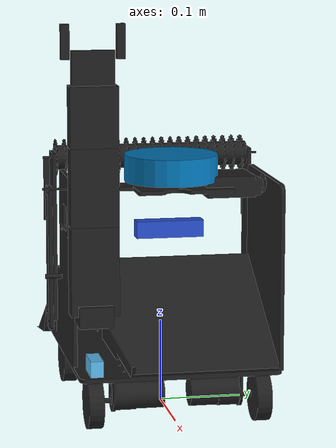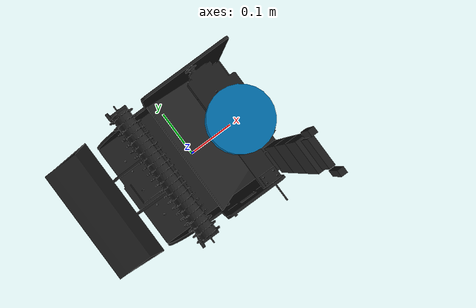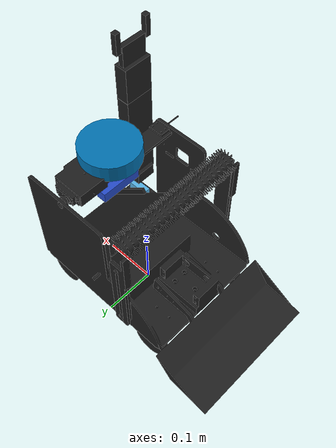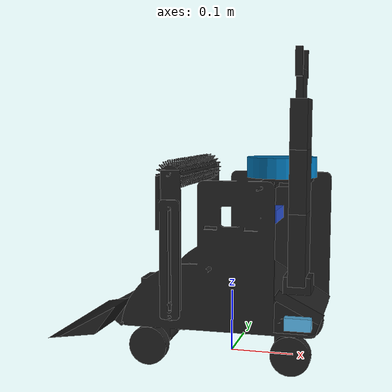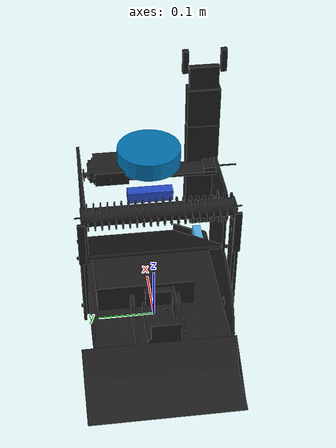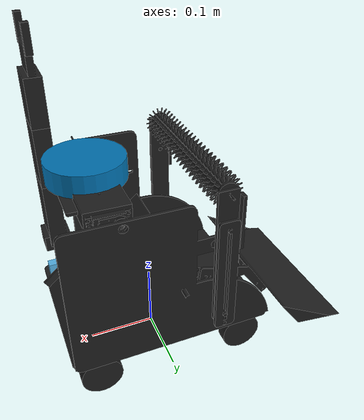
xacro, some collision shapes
<?xml version="1.0" ?>
<robot name="sakura" xmlns:xacro="http://ros.org/wiki/xacro">
  <xacro:include filename="$(find tel_map)/urdf/common_properties.xacro"/>
  <xacro:include filename="$(find tel_map)/urdf/sakura.gazebo.xacro"/>

  <link name="base_footprint"/>

  <joint name="base_joint" type="fixed">
    <parent link="base_footprint"/>
    <child link="mc_base"/>
    <origin xyz="0.0 0.0 0.0" rpy="0 0 0"/>
  </joint>

  <link name="mc_base">
    <visual>
      <origin xyz="0.3 0.135 0.015" rpy="1.57079 0 -1.57079"/>
      <geometry>
        <mesh filename="package://tel_map/meshes/bases/main.stl" scale="0.001 0.001 0.001"/>
      </geometry>
      <material name="light_black"/>
    </visual>

    <collision>
      <origin xyz="0.0 0 0.07" rpy="0 0 0"/>
      <geometry>
        <box size="0.280 0.280 0.05"/>
      </geometry>
    </collision>

    <inertial>
      <origin xyz="0 0 0" rpy="0 0 0"/>
      <mass value="200.0"/>
      <inertia ixx="0.15" ixy="0.001" ixz="0.001"
               iyy="0.15" iyz="0.001"
               izz="0.15" />
    </inertial>
  </link>

  <!--Shovel-->>

  <joint name="shovel_joint" type="revolute">
    <parent link="base_footprint"/>
    <child link="shovel_link"/>
    <origin xyz="-0.077 0.0 0.105" rpy="0 0 0"/>
    <limit lower="-0.1" upper="3.0416" effort="50" velocity="7.5"/>
    <axis xyz="0.0 1.0 0.0"/>
  </joint>

  <link name="shovel_link">
    <visual>
      <origin xyz="0.028 0.14 0.375" rpy="3.14159 0 -1.57079"/>
      <geometry>
        <mesh filename="package://tel_map/meshes/bases/shovel.stl" scale="0.001 0.001 0.001"/>
      </geometry>
      <material name="light_black"/>
    </visual>

    <collision  name="shovel_collision1">
      <origin xyz="-0.15 0 -0.065" rpy="0 -0.16 0"/>
      <geometry>
        <box size="0.09 0.24 0.002"/>
      </geometry>
    </collision>

    <collision name="shovel_collision2">
      <origin xyz="-0.1 0 -0.035" rpy="0 -0.95 0"/>
      <geometry>
        <box size="0.05 0.24 0.002"/>
      </geometry>
    </collision>

    <inertial>
      <origin xyz="-0.1 0 0" />
      <mass value="0.1" />
      <inertia ixx="1.1175580e-05" ixy="-4.2369783e-11" ixz="-5.9381719e-09"
               iyy="1.1192413e-05" iyz="-1.4400107e-11"
               izz="2.0712558e-05" />
      </inertial>
  </link>

  <!--roller-->>

  <joint name="roller_arm_joint" type="revolute">
    <parent link="base_footprint"/>
    <child link="roller_arm_a_link"/>
    <origin xyz="-0.069 0.0 0.083" rpy="0 0 0"/>
    <limit lower="-2.0" upper="1.0" effort="50" velocity="7.5"/>
    <axis xyz="0.0 1.0 0.0"/>
  </joint>

  <link name="roller_arm_a_link">
    <visual>
      <origin xyz="-0.02 0.335 -0.005" rpy="1.57079 0 0"/>
      <geometry>
        <mesh filename="package://tel_map/meshes/bases/roller_arm_a.stl" scale="0.001 0.001 0.001"/>
      </geometry>
      <material name="light_black"/>
    </visual>

    <inertial>
      <origin xyz="0.0 0 0.1" />
      <mass value="0.1" />
      <inertia ixx="0.005" ixy="0.00005" ixz="0.00005"
               iyy="0.005" iyz="0.00005"
               izz="0.005" />
    </inertial>
  </link>

   <joint name="roller_arm_slider" type="prismatic">
    <parent link="roller_arm_a_link"/>
    <child link="roller_arm_b_link"/>
    <origin xyz="0.0 0.0 0.0" rpy="0 0 0"/>
    <limit lower="0.0" upper="0.16" effort="250.0" velocity="0.15"/>
    <axis xyz="0.0 0.0 1.0"/>
    <safety_controller k_velocity="70" k_position="50" soft_lower_limit="-10.0" soft_upper_limit="10.0" />
  </joint>

  <link name="roller_arm_b_link">
    <visual>
      <origin xyz="-0.014 0.335 0.01" rpy="1.571 0 0"/>
      <geometry>
        <mesh filename="package://tel_map/meshes/bases/roller_arm_b.stl" scale="0.001 0.001 0.001"/>
      </geometry>
      <material name="light_black"/>
    </visual>

    <inertial>
      <origin xyz="0.0 0 0.1" />
      <mass value="0.05" />
      <inertia ixx="0.005" ixy="0.00005" ixz="0.00005"
               iyy="0.005" iyz="0.00005"
               izz="0.005" />
    </inertial>
  </link>

  <joint name="roller_joint" type="continuous">
    <parent link="roller_arm_b_link"/>
    <child link="roller_link"/>
    <origin xyz="0.0 0.0 0.212" rpy="0 0 0"/>
    <limit effort="500" velocity="20000.0"/>
    <axis xyz="0.0 1.0 0.0"/>
  </joint>

  <link name="roller_link">
    <visual>
      <origin xyz="-0.0223 -0.135 -0.022" rpy="0 0 0"/>
      <geometry>
        <mesh filename="package://tel_map/meshes/bases/roller.stl" scale="0.001 0.001 0.001"/>
      </geometry>
      <material name="light_black"/>
    </visual>

    <collision>
      <origin xyz="0 0 0" rpy="1.571 0 0"/>
      <geometry>
        <cylinder length="0.24" radius="0.022"/>
      </geometry>
    </collision>

    <inertial>
      <origin xyz="-0.0 0 0" />
      <mass value="0.02" />
      <inertia ixx="1.1175580e-05" ixy="0.0" ixz="0.0"
               iyy="1.1192413e-05" iyz="0.0"
               izz="2.0712558e-05" />
    </inertial>
  </link>

<!--wheels-->

  <joint name="wheel_left_joint" type="continuous">
    <parent link="mc_base"/>
    <child link="wheel_left_link"/>
    <origin xyz="0.11 0.1 0.03" rpy="-1.57079 0 0"/>
    <axis xyz="0 0 1"/>
  </joint>

  <link name="wheel_left_link">
    <visual>
      <origin xyz="0 0 0" rpy="0 0 0"/>
      <geometry>
        <cylinder length="0.018" radius="0.03"/>
      </geometry>
    </visual>

    <collision>
      <origin xyz="0 0 0" rpy="0 0 0"/>
      <geometry>
        <cylinder length="0.018" radius="0.03"/>
      </geometry>
    </collision>

    <inertial>
      <origin xyz="0 0 0" />
      <mass value="2.8498940e-02" />
      <inertia ixx="1.1175580e-05" ixy="-4.2369783e-11" ixz="-5.9381719e-09"
               iyy="1.1192413e-05" iyz="-1.4400107e-11"
               izz="2.0712558e-05" />
      </inertial>
  </link>

  <joint name="wheel_right_joint" type="continuous">
    <parent link="mc_base"/>
    <child link="wheel_right_link"/>
    <origin xyz="0.11 -0.1 0.03" rpy="-1.57079 0 0"/>
    <axis xyz="0 0 1"/>
  </joint>

  <link name="wheel_right_link">
    <visual>
      <origin xyz="0 0 0" rpy="0 0 0"/>
      <geometry>
        <cylinder length="0.018" radius="0.03"/>
      </geometry>
      <material name="dark"/>
    </visual>

    <collision>
      <origin xyz="0 0 0" rpy="0 0 0"/>
      <geometry>
        <cylinder length="0.018" radius="0.03"/>
      </geometry>
    </collision>

    <inertial>
      <origin xyz="0 0 0" />
      <mass value="2.8498940e-02" />
      <inertia ixx="1.1175580e-05" ixy="-4.2369783e-11" ixz="-5.9381719e-09"
               iyy="1.1192413e-05" iyz="-1.4400107e-11"
               izz="2.0712558e-05" />
      </inertial>
  </link>

  <joint name="wheel_bleft_joint" type="continuous">
    <parent link="mc_base"/>
    <child link="wheel_bleft_link"/>
    <origin xyz="-0.11 0.1 0.03" rpy="-1.57079 0 0"/>
    <axis xyz="0 0 1"/>
  </joint>

  <link name="wheel_bleft_link">
    <visual>
      <origin xyz="0 0 0" rpy="0 0 0"/>
      <geometry>
        <cylinder length="0.018" radius="0.03"/>
      </geometry>
      <material name="dark"/>
    </visual>

    <collision>
      <origin xyz="0 0 0" rpy="0 0 0"/>
      <geometry>
        <cylinder length="0.018" radius="0.03"/>
      </geometry>
    </collision>

    <inertial>
      <origin xyz="0 0 0" />
      <mass value="2.8498940e-02" />
      <inertia ixx="1.1175580e-05" ixy="-4.2369783e-11" ixz="-5.9381719e-09"
               iyy="1.1192413e-05" iyz="-1.4400107e-11"
               izz="2.0712558e-05" />
      </inertial>
  </link>

  <joint name="wheel_bright_joint" type="continuous">
    <parent link="mc_base"/>
    <child link="wheel_bright_link"/>
    <origin xyz="-0.11 -0.1 0.03" rpy="-1.57079 0 0"/>
    <axis xyz="0 0 1"/>
  </joint>

  <link name="wheel_bright_link">
    <visual>
      <origin xyz="0 0 0" rpy="0 0 0"/>
      <geometry>
        <cylinder length="0.018" radius="0.03"/>
      </geometry>
      <material name="dark"/>
    </visual>

    <collision>
      <origin xyz="0 0 0" rpy="0 0 0"/>
      <geometry>
        <cylinder length="0.018" radius="0.03"/>
      </geometry>
    </collision>

    <inertial>
      <origin xyz="0 0 0" />
      <mass value="2.8498940e-02" />
      <inertia ixx="1.1175580e-05" ixy="-4.2369783e-11" ixz="-5.9381719e-09"
               iyy="1.1192413e-05" iyz="-1.4400107e-11"
               izz="2.0712558e-05" />
      </inertial>
  </link>

  <joint name="rot_joint" type="revolute">
    <parent link="base_footprint"/>
    <child link="rot_link"/>
    <origin xyz="0.067 -0.12 0.278" rpy="0 0 0"/>
    <limit lower="0.0" upper="4.7124" effort="120" velocity="7.5"/>
    <axis xyz="0.0 1.0 0.0"/>
  </joint>

  <link name="rot_link">
    <visual>
    <origin xyz="-0.243 0.238 0.0" rpy="-1.28 0 -1.57079"/>
      <geometry>
        <mesh filename="package://tel_map/meshes/bases/rot.stl" scale="0.001 0.001 0.001"/>
      </geometry>
      <material name="light_black"/>
    </visual>

    <inertial>
      <mass value="0.114" />
      <origin xyz="0 0 0" />
      <inertia ixx="0.001" ixy="0.0" ixz="0.0"
               iyy="0.001" iyz="0.0"
               izz="0.001" />
    </inertial>
  </link>

  <joint name="imu_joint" type="fixed">
    <parent link="mc_base"/>
    <child link="imu_link"/>
    <origin xyz="-0.032 0 0.068" rpy="0 0 0"/>
  </joint>

  <link name="imu_link"/>

  <joint name="scan_joint" type="fixed">
    <parent link="rot_link"/>
    <child link="base_scan"/>
    <origin xyz="0.05 0 0.0" rpy="0 0 0"/>
  </joint>

  <link name="base_scan">

    <visual>
      <origin xyz="-0.038 0.118 0.025" rpy="0 0 0"/>
      <geometry>
        <mesh filename="package://tel_map/meshes/sensors/lds.stl" scale="0.001 0.001 0.001"/>
      </geometry>
      <material name="dark"/>
    </visual>

    <collision>
      <origin xyz="-0.038 0.118 0.025" rpy="0 0 0"/>
      <geometry>
        <cylinder length="0.0315" radius="0.055"/>
      </geometry>
    </collision>

    <inertial>
      <mass value="0.114" />
      <origin xyz="-0.038 0.118 0.025" rpy="0 0 0"/>
      <inertia ixx="0.001" ixy="0.0" ixz="0.0"
               iyy="0.001" iyz="0.0"
               izz="0.001" />
    </inertial>
  </link>

  <joint name="scaner_joint" type="fixed">
    <parent link="base_scan"/>
    <child link="scaner_link"/>
    <origin xyz="-0.038 0.118 0.025" rpy="0 0 0"/>
  </joint>

  <link name="scaner_link"/>

<joint name="cam_yaw_joint" type="revolute">
      <origin xyz="0.0 0.118 -0.05" rpy="0 0 0"/>
      <parent link="rot_link"/>
      <child link="camera_link"/>
      <limit lower="-1.57" upper="1.57" effort="50" velocity="7.5"/>
    	<axis xyz="0.0 0.0 1.0"/>
      <calibration rising="0.0"/>
      <dynamics damping="0.0" friction="0.0"/>
      <safety_controller k_velocity="80" k_position="50" soft_lower_limit="-5.0" soft_upper_limit="5.0" />
    </joint>

  <link name="camera_link">
    <visual>
      <origin xyz="0.0 0.0 0.0" rpy="0 0 0"/>
      <geometry>
        <box size="0.02 0.08 0.02"/>
      </geometry>
      <material name="blue"/>
    </visual>
    <inertial>
      <mass value="0.100" />
      <origin xyz="-0.0 0.0 0.0" rpy="0 0 0"/>
      <inertia ixx="0.000001" ixy="0.0001" ixz="0.0001"
               iyy="0.000001" iyz="0.0001"
               izz="0.000001" />
    </inertial>
  </link>

  <joint name="camera_rgb_joint" type="fixed">
    <origin xyz="0.0 0.0 0.0" rpy="0 0 0"/>
    <parent link="camera_link"/>
    <child link="camera_rgb_frame"/>
  </joint>
  <link name="camera_rgb_frame"/>

  <joint name="camera_rgb_optical_joint" type="fixed">
    <origin xyz="0 0 0" rpy="-1.57 0 -1.57"/>
    <parent link="camera_rgb_frame"/>
    <child link="camera_rgb_optical_frame"/>
  </joint>
  <link name="camera_rgb_optical_frame"/>

<joint name="arm_base_joint" type="fixed">
    <origin xyz="0.12 -0.10 0.075" rpy="0 0 0"/>
    <parent link="base_footprint"/>
    <child link="arm_base"/>
    </joint>

  <link name='arm_base'>
      <inertial>
      <origin xyz="0 0 0" />
      <mass value="0.001" />
      <inertia  ixx="0.0" ixy="0.0"  ixz="0.0"  iyy="0.0"  iyz="0.0"  izz="0.0" />
      </inertial>
      <visual name='visual'>
      <origin xyz="0 0 0"/>
        <geometry>
        <box size="0.04 0.015 0.025" />
        </geometry>
      </visual>
      <collision name='collision'>
      <origin xyz="0 0 0"/>
        <geometry>
        <box size="0.04 0.015 0.025" />
        </geometry>
      </collision>
    </link>

<joint name="plate_joint" type="revolute">
    <origin xyz="0 0 0.064" rpy="0 0 0"/>
      <parent link="arm_base"/>
      <child link="plate"/>
      <limit lower="-1.57" upper="1.57" effort="50" velocity="7.5"/>
    	<axis xyz="0.0 0.0 1.0"/>
      <calibration rising="0.0"/>
      <dynamics damping="0.0" friction="0.0"/>
      <safety_controller k_velocity="80" k_position="50" soft_lower_limit="-5.0" soft_upper_limit="5.0" />
    </joint>

<link name='plate'>
      <inertial>
      <origin xyz="0 0 0.0" />
      <mass value="0.001" />
      <inertia  ixx="0.0" ixy="0.0"  ixz="0.0"  iyy="0.0"  iyz="0.0"  izz="0.0" />
      </inertial>
      <visual name='visual'>
      <origin xyz="0 0 0.0"/>
        <geometry>
        <box size="0.04 0.04 0.025" />
        </geometry>
      </visual>
      <collision name='collision'>
      <origin xyz="0 0 0.0"/>
        <geometry>
        <box size="0.04 0.04 0.025" />
        </geometry>
      </collision>
    </link>

<joint name="j1_joint" type="revolute">
    <origin xyz="0 0 0.0" rpy="0 0 0"/>
      <parent link="plate"/>
      <child link="link2"/>
      <limit lower="-1.57" upper="1.57" effort="50" velocity="7.5"/>
    	<axis xyz="0.0 1.0 0.0"/>
      <calibration rising="0.0"/>
      <dynamics damping="0.0" friction="0.0"/>
      <safety_controller k_velocity="80" k_position="50" soft_lower_limit="-5.0" soft_upper_limit="5.0" />
    </joint>

<link name='link2'>
      <inertial>
      <origin xyz="0 0 0.05215" />
      <mass value="0.001" />
      <inertia  ixx="0.0" ixy="0.0"  ixz="0.0"  iyy="0.0"  iyz="0.0"  izz="0.0" />
      </inertial>
      <visual name='visual'>
      <origin xyz="0 0 0.05215"/>
        <geometry>
        <box size="0.025 0.0564 0.1043" />
        </geometry>
      </visual>
      <collision name='collision'>
      <origin xyz="0 0 0.05215"/>
        <geometry>
        <box size="0.025 0.0564 0.1043" />
        </geometry>
      </collision>
    </link>

<joint name="j2_joint" type="revolute">
    <origin xyz="0 0 0.1043" rpy="0 0 0.0"/>
      <parent link="link2"/>
      <child link="link3"/>
      <limit lower="-1.57" upper="1.57" effort="50" velocity="7.5"/>
    	<axis xyz="0.0 1.0 0.0"/>
      <calibration rising="0.0"/>
      <dynamics damping="0.0" friction="0.0"/>
      <safety_controller k_velocity="80" k_position="50" soft_lower_limit="-5.0" soft_upper_limit="5.0" />
    </joint>

<link name='link3'>
      <inertial>
      <origin xyz="0 0 0.0455" />
      <mass value="0.001" />
      <inertia  ixx="0.0" ixy="0.0"  ixz="0.0"  iyy="0.0"  iyz="0.0"  izz="0.0" />
      </inertial>
      <visual name='visual'>
      <origin xyz="0 0 0.0455"/>
        <geometry>
        <box size="0.025 0.0564 0.091" />
        </geometry>
      <material name="light_black"/>
      </visual>
      <collision name='collision'>
      <origin xyz="0 0 0.0455"/>
        <geometry>
        <box size="0.025 0.0564 0.091" />
        </geometry>
      </collision>
    </link>

<joint name="j3_joint" type="revolute">
    <origin xyz="0 0 0.091" rpy="0 0 0"/>
      <parent link="link3"/>
      <child link="link4"/>
      <limit lower="-1.57" upper="1.57" effort="50" velocity="7.5"/>
    	<axis xyz="0.0 -1.0 0.0"/>
      <calibration rising="0.0"/>
      <dynamics damping="0.0" friction="0.0"/>
      <safety_controller k_velocity="80" k_position="50" soft_lower_limit="-5.0" soft_upper_limit="5.0" />
    </joint>

<link name='link4'>
      <inertial>
      <origin xyz="0 0 0.0355" />
      <mass value="0.001" />
      <inertia  ixx="0.0" ixy="0.0"  ixz="0.0"  iyy="0.0"  iyz="0.0"  izz="0.0" />
      </inertial>
      <visual name='visual'>
      <origin xyz="0 0 0.0355"/>
        <geometry>
        <box size="0.025 0.0564 0.071" />
        </geometry>
      </visual>
      <collision name='collision'>
      <origin xyz="0 0 0.0355"/>
        <geometry>
        <box size="0.025 0.0564 0.071" />
        </geometry>
      </collision>
    </link>

    <joint name="j4_joint" type="revolute">
    <origin xyz="0 0 0.071" rpy="0 0 0.0"/>
      <parent link="link4"/>
      <child link="hand"/>
      <limit lower="-1.57" upper="1.57" effort="50" velocity="7.5"/>
    	<axis xyz="0.0 0.0 1.0"/>
      <calibration rising="0.0"/>
      <dynamics damping="0.0" friction="0.0"/>
      <safety_controller k_velocity="80" k_position="50" soft_lower_limit="-5.0" soft_upper_limit="5.0" />
    </joint>

  <link name='hand'>
      <inertial>
      <origin xyz="0 0 0.02" />
      <mass value="0.001" />
      <inertia  ixx="0.0" ixy="0.0"  ixz="0.0"  iyy="0.0"  iyz="0.0"  izz="0.0" />
      </inertial>
      <visual name='visual'>
      <origin xyz="0 0 0.02"/>
        <geometry>
        <box size="0.01 0.05 0.04" />
        </geometry>
      </visual>
    </link>

  <joint name="f1_joint" type="prismatic">
    <origin xyz="0 0.032 0.03" rpy="0 0 0"/>
      <parent link="hand"/>
      <child link="finger1"/>
      <limit lower="0.0" upper="0.025" effort="30" velocity="0.1"/>
    	<axis xyz="0.0 -1.0 0.0"/>
  </joint>

  <link name='finger1'>
      <inertial>
      <origin xyz="0 0 0.0" rpy="0 0 0"/>
      <mass value="0.05" />
      <inertia  ixx="0.0001" ixy="0.00000001"  ixz="0.00000001"  iyy="0.0001"  iyz="0.00000001"  izz="0.0001" />
      </inertial>
      <visual name='visual'>
      <origin xyz="0 0 0.02" rpy="0 0 0"/>
        <geometry>
        <box size="0.01 0.01 0.04" />
        </geometry>
      </visual>
      <collision>
      <origin xyz="0 0 0.02" rpy="0 0 0"/>
        <geometry>
        <box size="0.01 0.01 0.04"/>
        </geometry>
        <surface>
          <friction>
            <ode>
              <mu>100000</mu>
              <mu2>100000</mu2>
            </ode>
          </friction>
        </surface>
      </collision>
  </link>

  <joint name="f2_joint" type="prismatic">
    <origin xyz="0 -0.032 0.03" rpy="0 0 0"/>
      <parent link="hand"/>
      <child link="finger2"/>
      <limit lower="0.0" upper="0.025" effort="30" velocity="0.1"/>
    	<axis xyz="0.0 1.0 0.0"/>
  </joint>

  <link name='finger2'>
      <inertial>
      <origin xyz="0 0 0.0" rpy="0 0 0"/>
      <mass value="0.05" />
      <inertia  ixx="0.0001" ixy="0.00000001"  ixz="0.00000001"  iyy="0.0001"  iyz="0.00000001"  izz="0.0001" />
      </inertial>
      <visual name='visual'>
      <origin xyz="0 0 0.02" rpy="0 0 0"/>
        <geometry>
        <box size="0.01 0.01 0.04" />
        </geometry>
      </visual>
      <collision>
      <origin xyz="0 0 0.02" rpy="0 0 0"/>
        <geometry>
          <box size="0.01 0.01 0.04" />
        </geometry>
        <surface>
          <friction>
            <ode>
              <mu>100000</mu>
              <mu2>100000</mu2>
            </ode>
          </friction>
        </surface>
      </collision>
  </link>
</robot>
